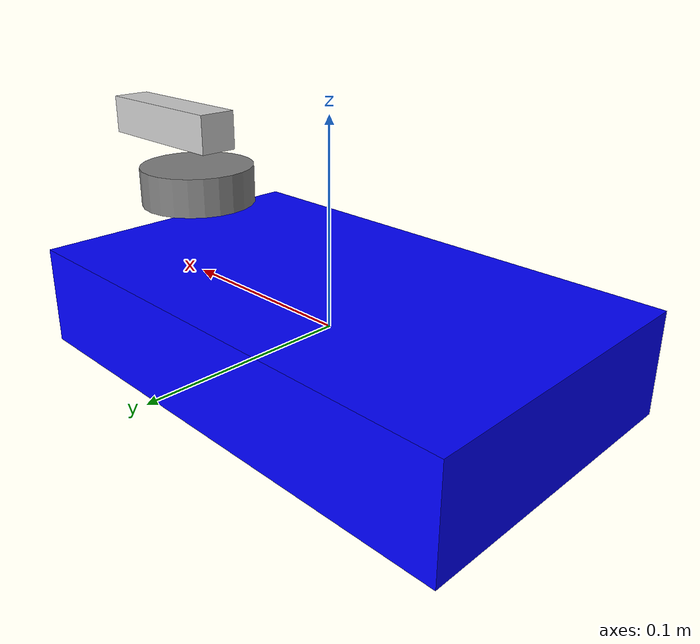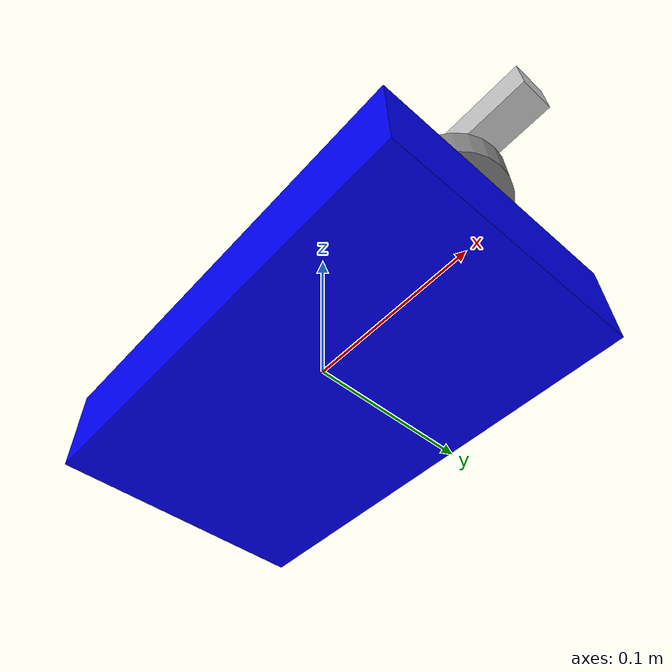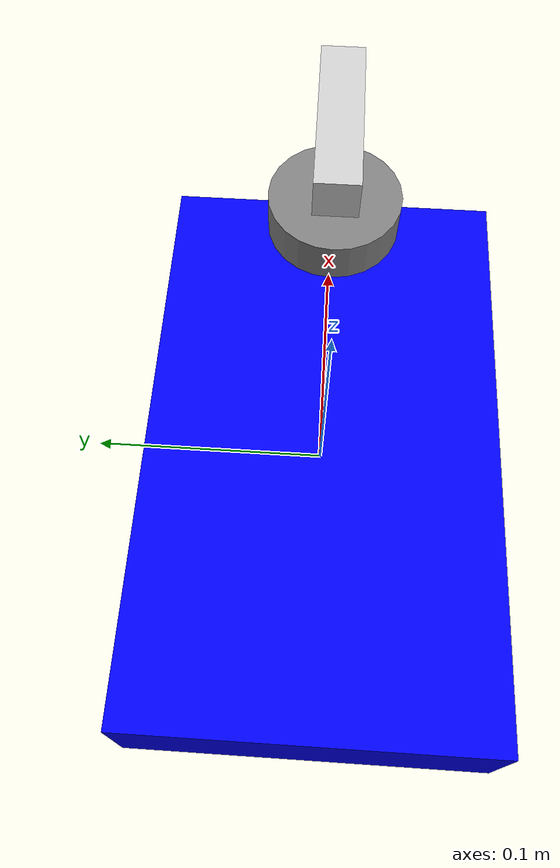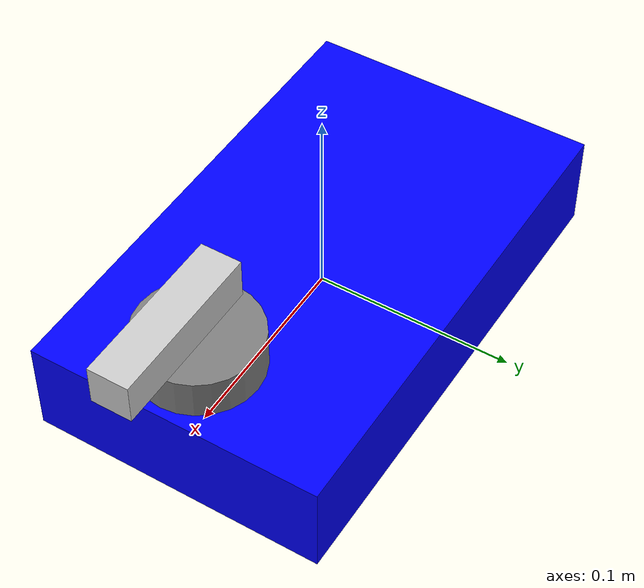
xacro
<?xml version="1.0"?>
<robot name="elegoo_minimal" xmlns:xacro="http://www.ros.org/wiki/xacro">

  <!-- Simple base link (chassis) -->
  <link name="base_link">
    <visual>
      <origin xyz="0 0 0" rpy="0 0 0"/>
      <geometry>
        <box size="0.25 0.15 0.05"/>
      </geometry>
      <material name="blue">
        <color rgba="0 0 1 1"/>
      </material>
    </visual>
  </link>

  <!-- LiDAR link: matches your rplidar _frame_id:=laser -->
  <link name="laser">
    <visual>
      <origin xyz="0 0 0" rpy="0 0 0"/>
      <geometry>
        <cylinder radius="0.03" length="0.02"/>
      </geometry>
      <material name="grey">
        <color rgba="0.5 0.5 0.5 1"/>
      </material>
    </visual>
  </link>

  <joint name="laser_joint" type="fixed">
    <parent link="base_link"/>
    <child link="laser"/>
    <!-- TODO: put the REAL LiDAR position here -->
    <!-- Example: 10 cm forward, 5 cm above base_link center -->
    <origin xyz="0.10 0.0 0.05" rpy="0 0 0"/>
  </joint>

  <!-- Realsense camera base frame -->
  <link name="camera_link">
    <visual>
      <origin xyz="0 0 0" rpy="0 0 0"/>
      <geometry>
        <box size="0.08 0.02 0.02"/>
      </geometry>
      <material name="silver">
        <color rgba="0.8 0.8 0.8 1"/>
      </material>
    </visual>
  </link>

  <joint name="camera_joint" type="fixed">
    <parent link="base_link"/>
    <child link="camera_link"/>
    <!-- TODO: real camera position -->
    <!-- Example: slightly more forward & higher than LiDAR -->
    <origin xyz="0.12 0.0 0.08" rpy="0 0 0"/>
  </joint>

</robot>
